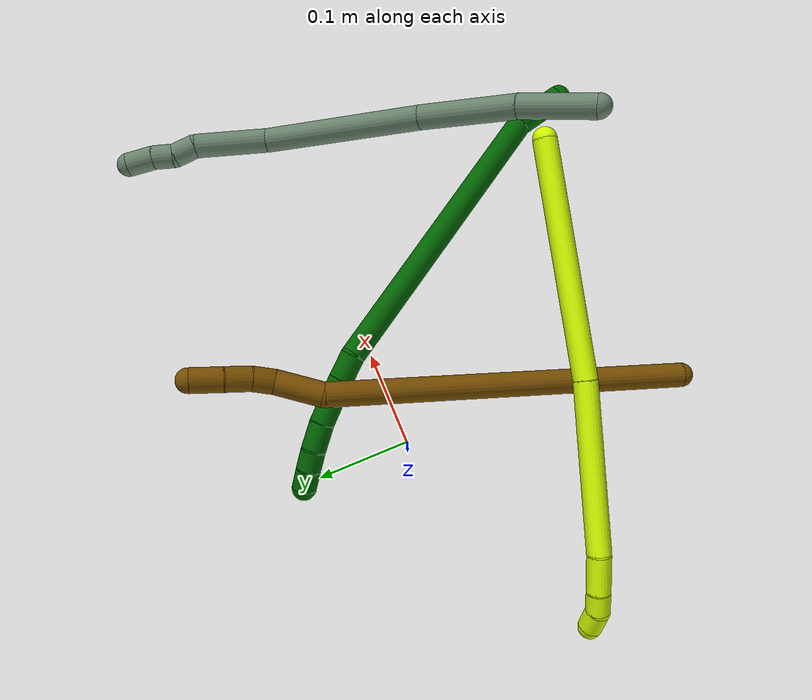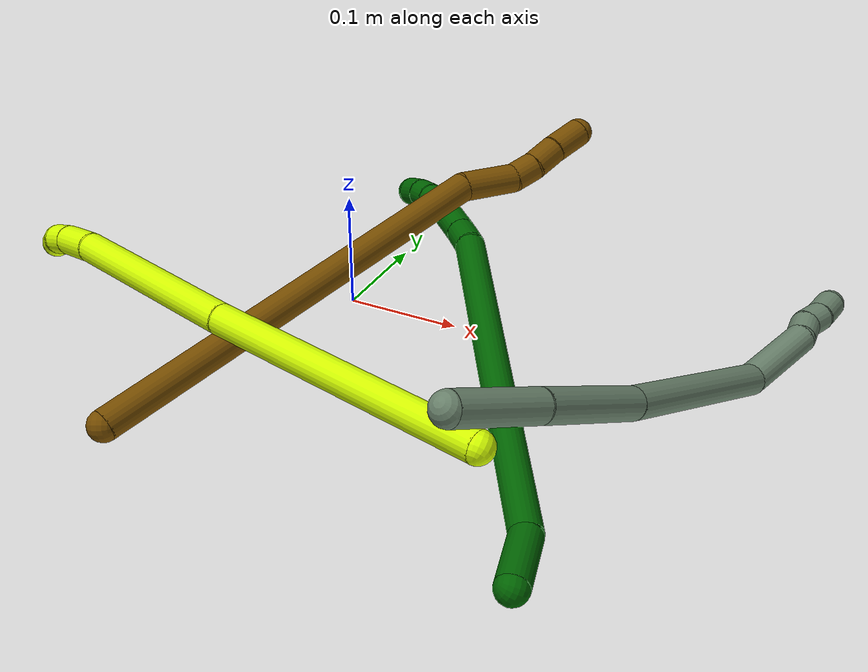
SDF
<sdf version="1.7">
 <world name="default">
  <model name="6">
   <static>0</static>
   <link name="6">
    <collision name="collision-cylinder-e_1_1_4">
     <pose>-0.022842 0.008369 0.005902 -0.956579 -1.14931 0.647792</pose>
     <geometry><cylinder><radius>0.0125</radius><length>0.050066</length></cylinder></geometry>
     <surface>
      <friction><ode><mu>1.16</mu><mu2>1.16</mu2><slip1>0</slip1><slip2>0</slip2></ode></friction>
      <contact><ode><kp>1e+06</kp><kd>1</kd><max_vel>0</max_vel><min_depth>0.001</min_depth></ode></contact>
     </surface>
    </collision>
    <visual name="visual-cylinder-e_1_1_4">
     <pose>-0.022842 0.008369 0.005902 -0.956579 -1.14931 0.647792</pose>
     <geometry><cylinder><radius>0.0125</radius><length>0.050066</length></cylinder></geometry>
     <material><ambient>0 0.392157 0.003922 1</ambient></material>
    </visual>
    <collision name="collision-cylinder-e_2_4_5">
     <pose>-0.186253 0.071856 -0.009478 -1.93928 -1.1729 1.5391</pose>
     <geometry><cylinder><radius>0.0125</radius><length>0.304962</length></cylinder></geometry>
     <surface>
      <friction><ode><mu>1.16</mu><mu2>1.16</mu2><slip1>0</slip1><slip2>0</slip2></ode></friction>
      <contact><ode><kp>1e+06</kp><kd>1</kd><max_vel>0</max_vel><min_depth>0.001</min_depth></ode></contact>
     </surface>
    </collision>
    <visual name="visual-cylinder-e_2_4_5">
     <pose>-0.186253 0.071856 -0.009478 -1.93928 -1.1729 1.5391</pose>
     <geometry><cylinder><radius>0.0125</radius><length>0.304962</length></cylinder></geometry>
     <material><ambient>0 0.392157 0.003922 1</ambient></material>
    </visual>
    <collision name="collision-cylinder-e_3_5_6">
     <pose>-0.337473 0.134925 -0.03308 -1.85467 -0.909769 1.15581</pose>
     <geometry><cylinder><radius>0.0125</radius><length>0.026985</length></cylinder></geometry>
     <surface>
      <friction><ode><mu>1.16</mu><mu2>1.16</mu2><slip1>0</slip1><slip2>0</slip2></ode></friction>
      <contact><ode><kp>1e+06</kp><kd>1</kd><max_vel>0</max_vel><min_depth>0.001</min_depth></ode></contact>
     </surface>
    </collision>
    <visual name="visual-cylinder-e_3_5_6">
     <pose>-0.337473 0.134925 -0.03308 -1.85467 -0.909769 1.15581</pose>
     <geometry><cylinder><radius>0.0125</radius><length>0.026985</length></cylinder></geometry>
     <material><ambient>0 0.392157 0.003922 1</ambient></material>
    </visual>
    <collision name="collision-cylinder-e_4_6_7">
     <pose>-0.366613 0.157021 -0.040712 -1.93005 -0.885674 1.20077</pose>
     <geometry><cylinder><radius>0.0125</radius><length>0.047755</length></cylinder></geometry>
     <surface>
      <friction><ode><mu>1.16</mu><mu2>1.16</mu2><slip1>0</slip1><slip2>0</slip2></ode></friction>
      <contact><ode><kp>1e+06</kp><kd>1</kd><max_vel>0</max_vel><min_depth>0.001</min_depth></ode></contact>
     </surface>
    </collision>
    <visual name="visual-cylinder-e_4_6_7">
     <pose>-0.366613 0.157021 -0.040712 -1.93005 -0.885674 1.20077</pose>
     <geometry><cylinder><radius>0.0125</radius><length>0.047755</length></cylinder></geometry>
     <material><ambient>0 0.392157 0.003922 1</ambient></material>
    </visual>
    <collision name="collision-cylinder-e_5_7_8">
     <pose>-0.395086 0.180136 -0.050172 -2.00401 -0.790451 1.15639</pose>
     <geometry><cylinder><radius>0.0125</radius><length>0.028096</length></cylinder></geometry>
     <surface>
      <friction><ode><mu>1.16</mu><mu2>1.16</mu2><slip1>0</slip1><slip2>0</slip2></ode></friction>
      <contact><ode><kp>1e+06</kp><kd>1</kd><max_vel>0</max_vel><min_depth>0.001</min_depth></ode></contact>
     </surface>
    </collision>
    <visual name="visual-cylinder-e_5_7_8">
     <pose>-0.395086 0.180136 -0.050172 -2.00401 -0.790451 1.15639</pose>
     <geometry><cylinder><radius>0.0125</radius><length>0.028096</length></cylinder></geometry>
     <material><ambient>0 0.392157 0.003922 1</ambient></material>
    </visual>
    <collision name="collision-cylinder-e_6_8_9">
     <pose>-0.411361 0.197041 -0.056944 -1.88998 -0.645297 0.866578</pose>
     <geometry><cylinder><radius>0.0125</radius><length>0.020921</length></cylinder></geometry>
     <surface>
      <friction><ode><mu>1.16</mu><mu2>1.16</mu2><slip1>0</slip1><slip2>0</slip2></ode></friction>
      <contact><ode><kp>1e+06</kp><kd>1</kd><max_vel>0</max_vel><min_depth>0.001</min_depth></ode></contact>
     </surface>
    </collision>
    <visual name="visual-cylinder-e_6_8_9">
     <pose>-0.411361 0.197041 -0.056944 -1.88998 -0.645297 0.866578</pose>
     <geometry><cylinder><radius>0.0125</radius><length>0.020921</length></cylinder></geometry>
     <material><ambient>0 0.392157 0.003922 1</ambient></material>
    </visual>
    <collision name="collision-cylinder-e_7_9_2">
     <pose>-0.42313 0.213838 -0.061559 -1.79197 -0.542735 0.669316</pose>
     <geometry><cylinder><radius>0.0125</radius><length>0.021215</length></cylinder></geometry>
     <surface>
      <friction><ode><mu>1.16</mu><mu2>1.16</mu2><slip1>0</slip1><slip2>0</slip2></ode></friction>
      <contact><ode><kp>1e+06</kp><kd>1</kd><max_vel>0</max_vel><min_depth>0.001</min_depth></ode></contact>
     </surface>
    </collision>
    <visual name="visual-cylinder-e_7_9_2">
     <pose>-0.42313 0.213838 -0.061559 -1.79197 -0.542735 0.669316</pose>
     <geometry><cylinder><radius>0.0125</radius><length>0.021215</length></cylinder></geometry>
     <material><ambient>0 0.392157 0.003922 1</ambient></material>
    </visual>
    <collision name="collision-sphere-2">
     <pose>-0.428609 0.2227 -0.063551 0 -0 0</pose>
     <geometry><sphere><radius>0.0125</radius></sphere></geometry>
     <surface>
      <friction><ode><mu>1.16</mu><mu2>1.16</mu2><slip1>0</slip1><slip2>0</slip2></ode></friction>
      <contact><ode><kp>1e+06</kp><kd>1</kd><max_vel>0</max_vel><min_depth>0.001</min_depth></ode></contact>
     </surface>
    </collision>
    <visual name="visual-sphere-2">
     <pose>-0.428609 0.2227 -0.063551 0 -0 0</pose>
     <geometry><sphere><radius>0.0125</radius></sphere></geometry>
     <material><ambient>0 0.392157 0.003922 1</ambient></material>
    </visual>
    <collision name="collision-sphere-9">
     <pose>-0.417652 0.204976 -0.059566 0 -0 0</pose>
     <geometry><sphere><radius>0.0125</radius></sphere></geometry>
     <surface>
      <friction><ode><mu>1.16</mu><mu2>1.16</mu2><slip1>0</slip1><slip2>0</slip2></ode></friction>
      <contact><ode><kp>1e+06</kp><kd>1</kd><max_vel>0</max_vel><min_depth>0.001</min_depth></ode></contact>
     </surface>
    </collision>
    <visual name="visual-sphere-9">
     <pose>-0.417652 0.204976 -0.059566 0 -0 0</pose>
     <geometry><sphere><radius>0.0125</radius></sphere></geometry>
     <material><ambient>0 0.392157 0.003922 1</ambient></material>
    </visual>
    <collision name="collision-sphere-4">
     <pose>-0.045684 0.016739 0.011805 0 -0 0</pose>
     <geometry><sphere><radius>0.0125</radius></sphere></geometry>
     <surface>
      <friction><ode><mu>1.16</mu><mu2>1.16</mu2><slip1>0</slip1><slip2>0</slip2></ode></friction>
      <contact><ode><kp>1e+06</kp><kd>1</kd><max_vel>0</max_vel><min_depth>0.001</min_depth></ode></contact>
     </surface>
    </collision>
    <visual name="visual-sphere-4">
     <pose>-0.045684 0.016739 0.011805 0 -0 0</pose>
     <geometry><sphere><radius>0.0125</radius></sphere></geometry>
     <material><ambient>0 0.392157 0.003922 1</ambient></material>
    </visual>
    <collision name="collision-sphere-1">
     <geometry><sphere><radius>0.0125</radius></sphere></geometry>
     <surface>
      <friction><ode><mu>1.16</mu><mu2>1.16</mu2><slip1>0</slip1><slip2>0</slip2></ode></friction>
      <contact><ode><kp>1e+06</kp><kd>1</kd><max_vel>0</max_vel><min_depth>0.001</min_depth></ode></contact>
     </surface>
    </collision>
    <visual name="visual-sphere-1">
     <geometry><sphere><radius>0.0125</radius></sphere></geometry>
     <material><ambient>0 0.392157 0.003922 1</ambient></material>
    </visual>
    <collision name="collision-sphere-8">
     <pose>-0.405069 0.189106 -0.054321 0 -0 0</pose>
     <geometry><sphere><radius>0.0125</radius></sphere></geometry>
     <surface>
      <friction><ode><mu>1.16</mu><mu2>1.16</mu2><slip1>0</slip1><slip2>0</slip2></ode></friction>
      <contact><ode><kp>1e+06</kp><kd>1</kd><max_vel>0</max_vel><min_depth>0.001</min_depth></ode></contact>
     </surface>
    </collision>
    <visual name="visual-sphere-8">
     <pose>-0.405069 0.189106 -0.054321 0 -0 0</pose>
     <geometry><sphere><radius>0.0125</radius></sphere></geometry>
     <material><ambient>0 0.392157 0.003922 1</ambient></material>
    </visual>
    <collision name="collision-sphere-5">
     <pose>-0.326822 0.126973 -0.03076 0 -0 0</pose>
     <geometry><sphere><radius>0.0125</radius></sphere></geometry>
     <surface>
      <friction><ode><mu>1.16</mu><mu2>1.16</mu2><slip1>0</slip1><slip2>0</slip2></ode></friction>
      <contact><ode><kp>1e+06</kp><kd>1</kd><max_vel>0</max_vel><min_depth>0.001</min_depth></ode></contact>
     </surface>
    </collision>
    <visual name="visual-sphere-5">
     <pose>-0.326822 0.126973 -0.03076 0 -0 0</pose>
     <geometry><sphere><radius>0.0125</radius></sphere></geometry>
     <material><ambient>0 0.392157 0.003922 1</ambient></material>
    </visual>
    <collision name="collision-sphere-6">
     <pose>-0.348123 0.142877 -0.0354 0 -0 0</pose>
     <geometry><sphere><radius>0.0125</radius></sphere></geometry>
     <surface>
      <friction><ode><mu>1.16</mu><mu2>1.16</mu2><slip1>0</slip1><slip2>0</slip2></ode></friction>
      <contact><ode><kp>1e+06</kp><kd>1</kd><max_vel>0</max_vel><min_depth>0.001</min_depth></ode></contact>
     </surface>
    </collision>
    <visual name="visual-sphere-6">
     <pose>-0.348123 0.142877 -0.0354 0 -0 0</pose>
     <geometry><sphere><radius>0.0125</radius></sphere></geometry>
     <material><ambient>0 0.392157 0.003922 1</ambient></material>
    </visual>
    <collision name="collision-sphere-7">
     <pose>-0.385102 0.171166 -0.046024 0 -0 0</pose>
     <geometry><sphere><radius>0.0125</radius></sphere></geometry>
     <surface>
      <friction><ode><mu>1.16</mu><mu2>1.16</mu2><slip1>0</slip1><slip2>0</slip2></ode></friction>
      <contact><ode><kp>1e+06</kp><kd>1</kd><max_vel>0</max_vel><min_depth>0.001</min_depth></ode></contact>
     </surface>
    </collision>
    <visual name="visual-sphere-7">
     <pose>-0.385102 0.171166 -0.046024 0 -0 0</pose>
     <geometry><sphere><radius>0.0125</radius></sphere></geometry>
     <material><ambient>0 0.392157 0.003922 1</ambient></material>
    </visual>
    <inertial>
     <pose>-0.226482 0.094384 -0.018677 0 -0 0</pose>
     <mass>0.5</mass>
     <inertia>
      <ixx>0.00094</ixx>
      <ixy>0</ixy>
      <ixz>0</ixz>
      <iyy>0.002988</iyy>
      <iyz>0</iyz>
      <izz>0.001335</izz>
     </inertia>
    </inertial>
   </link>
   <pose>0.278335 -0.287094 0.01247 -2.13006 0.453767 -1.32775</pose>
  </model>
  <model name="12">
   <static>0</static>
   <link name="12">
    <collision name="collision-cylinder-e_1_1_4">
     <pose>-0.017312 0.144142 0.113692 -0.90295 -0.094021 0.045614</pose>
     <geometry><cylinder><radius>0.0125</radius><length>0.368795</length></cylinder></geometry>
     <surface>
      <friction><ode><mu>1.16</mu><mu2>1.16</mu2><slip1>0</slip1><slip2>0</slip2></ode></friction>
      <contact><ode><kp>1e+06</kp><kd>1</kd><max_vel>0</max_vel><min_depth>0.001</min_depth></ode></contact>
     </surface>
    </collision>
    <visual name="visual-cylinder-e_1_1_4">
     <pose>-0.017312 0.144142 0.113692 -0.90295 -0.094021 0.045614</pose>
     <geometry><cylinder><radius>0.0125</radius><length>0.368795</length></cylinder></geometry>
     <material><ambient>0.466667 0.301961 0 1</ambient></material>
    </visual>
    <collision name="collision-cylinder-e_2_4_5">
     <pose>-0.030963 0.30234 0.247372 -0.61295 0.1487 -0.047133</pose>
     <geometry><cylinder><radius>0.0125</radius><length>0.049416</length></cylinder></geometry>
     <surface>
      <friction><ode><mu>1.16</mu><mu2>1.16</mu2><slip1>0</slip1><slip2>0</slip2></ode></friction>
      <contact><ode><kp>1e+06</kp><kd>1</kd><max_vel>0</max_vel><min_depth>0.001</min_depth></ode></contact>
     </surface>
    </collision>
    <visual name="visual-cylinder-e_2_4_5">
     <pose>-0.030963 0.30234 0.247372 -0.61295 0.1487 -0.047133</pose>
     <geometry><cylinder><radius>0.0125</radius><length>0.049416</length></cylinder></geometry>
     <material><ambient>0.466667 0.301961 0 1</ambient></material>
    </visual>
    <collision name="collision-cylinder-e_3_5_6">
     <pose>-0.029174 0.323593 0.275857 -0.702542 -0.166579 0.061169</pose>
     <geometry><cylinder><radius>0.0125</radius><length>0.022582</length></cylinder></geometry>
     <surface>
      <friction><ode><mu>1.16</mu><mu2>1.16</mu2><slip1>0</slip1><slip2>0</slip2></ode></friction>
      <contact><ode><kp>1e+06</kp><kd>1</kd><max_vel>0</max_vel><min_depth>0.001</min_depth></ode></contact>
     </surface>
    </collision>
    <visual name="visual-cylinder-e_3_5_6">
     <pose>-0.029174 0.323593 0.275857 -0.702542 -0.166579 0.061169</pose>
     <geometry><cylinder><radius>0.0125</radius><length>0.022582</length></cylinder></geometry>
     <material><ambient>0.466667 0.301961 0 1</ambient></material>
    </visual>
    <collision name="collision-cylinder-e_4_6_7">
     <pose>-0.033974 0.340597 0.292664 -0.86805 -0.223865 0.104103</pose>
     <geometry><cylinder><radius>0.0125</radius><length>0.026369</length></cylinder></geometry>
     <surface>
      <friction><ode><mu>1.16</mu><mu2>1.16</mu2><slip1>0</slip1><slip2>0</slip2></ode></friction>
      <contact><ode><kp>1e+06</kp><kd>1</kd><max_vel>0</max_vel><min_depth>0.001</min_depth></ode></contact>
     </surface>
    </collision>
    <visual name="visual-cylinder-e_4_6_7">
     <pose>-0.033974 0.340597 0.292664 -0.86805 -0.223865 0.104103</pose>
     <geometry><cylinder><radius>0.0125</radius><length>0.026369</length></cylinder></geometry>
     <material><ambient>0.466667 0.301961 0 1</ambient></material>
    </visual>
    <collision name="collision-cylinder-e_5_7_2">
     <pose>-0.038927 0.362955 0.311366 -0.879045 -0.123713 0.058227</pose>
     <geometry><cylinder><radius>0.0125</radius><length>0.032837</length></cylinder></geometry>
     <surface>
      <friction><ode><mu>1.16</mu><mu2>1.16</mu2><slip1>0</slip1><slip2>0</slip2></ode></friction>
      <contact><ode><kp>1e+06</kp><kd>1</kd><max_vel>0</max_vel><min_depth>0.001</min_depth></ode></contact>
     </surface>
    </collision>
    <visual name="visual-cylinder-e_5_7_2">
     <pose>-0.038927 0.362955 0.311366 -0.879045 -0.123713 0.058227</pose>
     <geometry><cylinder><radius>0.0125</radius><length>0.032837</length></cylinder></geometry>
     <material><ambient>0.466667 0.301961 0 1</ambient></material>
    </visual>
    <collision name="collision-sphere-2">
     <pose>-0.040953 0.375503 0.321759 0 -0 0</pose>
     <geometry><sphere><radius>0.0125</radius></sphere></geometry>
     <surface>
      <friction><ode><mu>1.16</mu><mu2>1.16</mu2><slip1>0</slip1><slip2>0</slip2></ode></friction>
      <contact><ode><kp>1e+06</kp><kd>1</kd><max_vel>0</max_vel><min_depth>0.001</min_depth></ode></contact>
     </surface>
    </collision>
    <visual name="visual-sphere-2">
     <pose>-0.040953 0.375503 0.321759 0 -0 0</pose>
     <geometry><sphere><radius>0.0125</radius></sphere></geometry>
     <material><ambient>0.466667 0.301961 0 1</ambient></material>
    </visual>
    <collision name="collision-sphere-7">
     <pose>-0.036901 0.350407 0.300973 0 -0 0</pose>
     <geometry><sphere><radius>0.0125</radius></sphere></geometry>
     <surface>
      <friction><ode><mu>1.16</mu><mu2>1.16</mu2><slip1>0</slip1><slip2>0</slip2></ode></friction>
      <contact><ode><kp>1e+06</kp><kd>1</kd><max_vel>0</max_vel><min_depth>0.001</min_depth></ode></contact>
     </surface>
    </collision>
    <visual name="visual-sphere-7">
     <pose>-0.036901 0.350407 0.300973 0 -0 0</pose>
     <geometry><sphere><radius>0.0125</radius></sphere></geometry>
     <material><ambient>0.466667 0.301961 0 1</ambient></material>
    </visual>
    <collision name="collision-sphere-6">
     <pose>-0.031047 0.330787 0.284355 0 -0 0</pose>
     <geometry><sphere><radius>0.0125</radius></sphere></geometry>
     <surface>
      <friction><ode><mu>1.16</mu><mu2>1.16</mu2><slip1>0</slip1><slip2>0</slip2></ode></friction>
      <contact><ode><kp>1e+06</kp><kd>1</kd><max_vel>0</max_vel><min_depth>0.001</min_depth></ode></contact>
     </surface>
    </collision>
    <visual name="visual-sphere-6">
     <pose>-0.031047 0.330787 0.284355 0 -0 0</pose>
     <geometry><sphere><radius>0.0125</radius></sphere></geometry>
     <material><ambient>0.466667 0.301961 0 1</ambient></material>
    </visual>
    <collision name="collision-sphere-5">
     <pose>-0.027302 0.316398 0.267359 0 -0 0</pose>
     <geometry><sphere><radius>0.0125</radius></sphere></geometry>
     <surface>
      <friction><ode><mu>1.16</mu><mu2>1.16</mu2><slip1>0</slip1><slip2>0</slip2></ode></friction>
      <contact><ode><kp>1e+06</kp><kd>1</kd><max_vel>0</max_vel><min_depth>0.001</min_depth></ode></contact>
     </surface>
    </collision>
    <visual name="visual-sphere-5">
     <pose>-0.027302 0.316398 0.267359 0 -0 0</pose>
     <geometry><sphere><radius>0.0125</radius></sphere></geometry>
     <material><ambient>0.466667 0.301961 0 1</ambient></material>
    </visual>
    <collision name="collision-sphere-1">
     <geometry><sphere><radius>0.0125</radius></sphere></geometry>
     <surface>
      <friction><ode><mu>1.16</mu><mu2>1.16</mu2><slip1>0</slip1><slip2>0</slip2></ode></friction>
      <contact><ode><kp>1e+06</kp><kd>1</kd><max_vel>0</max_vel><min_depth>0.001</min_depth></ode></contact>
     </surface>
    </collision>
    <visual name="visual-sphere-1">
     <geometry><sphere><radius>0.0125</radius></sphere></geometry>
     <material><ambient>0.466667 0.301961 0 1</ambient></material>
    </visual>
    <collision name="collision-sphere-4">
     <pose>-0.034623 0.288283 0.227385 0 -0 0</pose>
     <geometry><sphere><radius>0.0125</radius></sphere></geometry>
     <surface>
      <friction><ode><mu>1.16</mu><mu2>1.16</mu2><slip1>0</slip1><slip2>0</slip2></ode></friction>
      <contact><ode><kp>1e+06</kp><kd>1</kd><max_vel>0</max_vel><min_depth>0.001</min_depth></ode></contact>
     </surface>
    </collision>
    <visual name="visual-sphere-4">
     <pose>-0.034623 0.288283 0.227385 0 -0 0</pose>
     <geometry><sphere><radius>0.0125</radius></sphere></geometry>
     <material><ambient>0.466667 0.301961 0 1</ambient></material>
    </visual>
    <inertial>
     <pose>-0.021495 0.192613 0.156649 0 -0 0</pose>
     <mass>0.5</mass>
     <inertia>
      <ixx>0.004379</ixx>
      <ixy>0</ixy>
      <ixz>0</ixz>
      <iyy>0.002844</iyy>
      <iyz>0</iyz>
      <izz>-0.002873</izz>
     </inertia>
    </inertial>
   </link>
   <pose>-0.039105 -0.288556 0.037756 0.253014 1.45346 0.569931</pose>
  </model>
  <model name="15">
   <static>0</static>
   <link name="15">
    <collision name="collision-cylinder-e_1_1_4">
     <pose>-0.108152 -0.04887 0.023454 1.12333 -1.10618 -0.741093</pose>
     <geometry><cylinder><radius>0.0125</radius><length>0.241952</length></cylinder></geometry>
     <surface>
      <friction><ode><mu>1.16</mu><mu2>1.16</mu2><slip1>0</slip1><slip2>0</slip2></ode></friction>
      <contact><ode><kp>1e+06</kp><kd>1</kd><max_vel>0</max_vel><min_depth>0.001</min_depth></ode></contact>
     </surface>
    </collision>
    <visual name="visual-cylinder-e_1_1_4">
     <pose>-0.108152 -0.04887 0.023454 1.12333 -1.10618 -0.741093</pose>
     <geometry><cylinder><radius>0.0125</radius><length>0.241952</length></cylinder></geometry>
     <material><ambient>0.835294 1 0 1</ambient></material>
    </visual>
    <collision name="collision-cylinder-e_2_4_5">
     <pose>-0.295312 -0.126558 0.068118 0.936322 -1.14556 -0.630442</pose>
     <geometry><cylinder><radius>0.0125</radius><length>0.173466</length></cylinder></geometry>
     <surface>
      <friction><ode><mu>1.16</mu><mu2>1.16</mu2><slip1>0</slip1><slip2>0</slip2></ode></friction>
      <contact><ode><kp>1e+06</kp><kd>1</kd><max_vel>0</max_vel><min_depth>0.001</min_depth></ode></contact>
     </surface>
    </collision>
    <visual name="visual-cylinder-e_2_4_5">
     <pose>-0.295312 -0.126558 0.068118 0.936322 -1.14556 -0.630442</pose>
     <geometry><cylinder><radius>0.0125</radius><length>0.173466</length></cylinder></geometry>
     <material><ambient>0.835294 1 0 1</ambient></material>
    </visual>
    <collision name="collision-cylinder-e_3_5_6">
     <pose>-0.393381 -0.158515 0.09325 0.675011 -1.31302 -0.528177</pose>
     <geometry><cylinder><radius>0.0125</radius><length>0.039423</length></cylinder></geometry>
     <surface>
      <friction><ode><mu>1.16</mu><mu2>1.16</mu2><slip1>0</slip1><slip2>0</slip2></ode></friction>
      <contact><ode><kp>1e+06</kp><kd>1</kd><max_vel>0</max_vel><min_depth>0.001</min_depth></ode></contact>
     </surface>
    </collision>
    <visual name="visual-cylinder-e_3_5_6">
     <pose>-0.393381 -0.158515 0.09325 0.675011 -1.31302 -0.528177</pose>
     <geometry><cylinder><radius>0.0125</radius><length>0.039423</length></cylinder></geometry>
     <material><ambient>0.835294 1 0 1</ambient></material>
    </visual>
    <collision name="collision-cylinder-e_4_6_7">
     <pose>-0.423352 -0.162508 0.098533 0.560367 -1.42472 -0.487161</pose>
     <geometry><cylinder><radius>0.0125</radius><length>0.022057</length></cylinder></geometry>
     <surface>
      <friction><ode><mu>1.16</mu><mu2>1.16</mu2><slip1>0</slip1><slip2>0</slip2></ode></friction>
      <contact><ode><kp>1e+06</kp><kd>1</kd><max_vel>0</max_vel><min_depth>0.001</min_depth></ode></contact>
     </surface>
    </collision>
    <visual name="visual-cylinder-e_4_6_7">
     <pose>-0.423352 -0.162508 0.098533 0.560367 -1.42472 -0.487161</pose>
     <geometry><cylinder><radius>0.0125</radius><length>0.022057</length></cylinder></geometry>
     <material><ambient>0.835294 1 0 1</ambient></material>
    </visual>
    <collision name="collision-cylinder-e_5_7_2">
     <pose>-0.445089 -0.159867 0.101896 -1.0502 -1.21458 0.765476</pose>
     <geometry><cylinder><radius>0.0125</radius><length>0.023102</length></cylinder></geometry>
     <surface>
      <friction><ode><mu>1.16</mu><mu2>1.16</mu2><slip1>0</slip1><slip2>0</slip2></ode></friction>
      <contact><ode><kp>1e+06</kp><kd>1</kd><max_vel>0</max_vel><min_depth>0.001</min_depth></ode></contact>
     </surface>
    </collision>
    <visual name="visual-cylinder-e_5_7_2">
     <pose>-0.445089 -0.159867 0.101896 -1.0502 -1.21458 0.765476</pose>
     <geometry><cylinder><radius>0.0125</radius><length>0.023102</length></cylinder></geometry>
     <material><ambient>0.835294 1 0 1</ambient></material>
    </visual>
    <collision name="collision-sphere-2">
     <pose>-0.455915 -0.156373 0.1039 0 -0 0</pose>
     <geometry><sphere><radius>0.0125</radius></sphere></geometry>
     <surface>
      <friction><ode><mu>1.16</mu><mu2>1.16</mu2><slip1>0</slip1><slip2>0</slip2></ode></friction>
      <contact><ode><kp>1e+06</kp><kd>1</kd><max_vel>0</max_vel><min_depth>0.001</min_depth></ode></contact>
     </surface>
    </collision>
    <visual name="visual-sphere-2">
     <pose>-0.455915 -0.156373 0.1039 0 -0 0</pose>
     <geometry><sphere><radius>0.0125</radius></sphere></geometry>
     <material><ambient>0.835294 1 0 1</ambient></material>
    </visual>
    <collision name="collision-sphere-7">
     <pose>-0.434263 -0.163362 0.099892 0 -0 0</pose>
     <geometry><sphere><radius>0.0125</radius></sphere></geometry>
     <surface>
      <friction><ode><mu>1.16</mu><mu2>1.16</mu2><slip1>0</slip1><slip2>0</slip2></ode></friction>
      <contact><ode><kp>1e+06</kp><kd>1</kd><max_vel>0</max_vel><min_depth>0.001</min_depth></ode></contact>
     </surface>
    </collision>
    <visual name="visual-sphere-7">
     <pose>-0.434263 -0.163362 0.099892 0 -0 0</pose>
     <geometry><sphere><radius>0.0125</radius></sphere></geometry>
     <material><ambient>0.835294 1 0 1</ambient></material>
    </visual>
    <collision name="collision-sphere-6">
     <pose>-0.412441 -0.161655 0.097173 0 -0 0</pose>
     <geometry><sphere><radius>0.0125</radius></sphere></geometry>
     <surface>
      <friction><ode><mu>1.16</mu><mu2>1.16</mu2><slip1>0</slip1><slip2>0</slip2></ode></friction>
      <contact><ode><kp>1e+06</kp><kd>1</kd><max_vel>0</max_vel><min_depth>0.001</min_depth></ode></contact>
     </surface>
    </collision>
    <visual name="visual-sphere-6">
     <pose>-0.412441 -0.161655 0.097173 0 -0 0</pose>
     <geometry><sphere><radius>0.0125</radius></sphere></geometry>
     <material><ambient>0.835294 1 0 1</ambient></material>
    </visual>
    <collision name="collision-sphere-5">
     <pose>-0.374321 -0.155375 0.089327 0 -0 0</pose>
     <geometry><sphere><radius>0.0125</radius></sphere></geometry>
     <surface>
      <friction><ode><mu>1.16</mu><mu2>1.16</mu2><slip1>0</slip1><slip2>0</slip2></ode></friction>
      <contact><ode><kp>1e+06</kp><kd>1</kd><max_vel>0</max_vel><min_depth>0.001</min_depth></ode></contact>
     </surface>
    </collision>
    <visual name="visual-sphere-5">
     <pose>-0.374321 -0.155375 0.089327 0 -0 0</pose>
     <geometry><sphere><radius>0.0125</radius></sphere></geometry>
     <material><ambient>0.835294 1 0 1</ambient></material>
    </visual>
    <collision name="collision-sphere-1">
     <geometry><sphere><radius>0.0125</radius></sphere></geometry>
     <surface>
      <friction><ode><mu>1.16</mu><mu2>1.16</mu2><slip1>0</slip1><slip2>0</slip2></ode></friction>
      <contact><ode><kp>1e+06</kp><kd>1</kd><max_vel>0</max_vel><min_depth>0.001</min_depth></ode></contact>
     </surface>
    </collision>
    <visual name="visual-sphere-1">
     <geometry><sphere><radius>0.0125</radius></sphere></geometry>
     <material><ambient>0.835294 1 0 1</ambient></material>
    </visual>
    <collision name="collision-sphere-4">
     <pose>-0.216303 -0.09774 0.046908 0 -0 0</pose>
     <geometry><sphere><radius>0.0125</radius></sphere></geometry>
     <surface>
      <friction><ode><mu>1.16</mu><mu2>1.16</mu2><slip1>0</slip1><slip2>0</slip2></ode></friction>
      <contact><ode><kp>1e+06</kp><kd>1</kd><max_vel>0</max_vel><min_depth>0.001</min_depth></ode></contact>
     </surface>
    </collision>
    <visual name="visual-sphere-4">
     <pose>-0.216303 -0.09774 0.046908 0 -0 0</pose>
     <geometry><sphere><radius>0.0125</radius></sphere></geometry>
     <material><ambient>0.835294 1 0 1</ambient></material>
    </visual>
    <inertial>
     <pose>-0.225045 -0.094609 0.051389 0 -0 0</pose>
     <mass>0.5</mass>
     <inertia><ixx>3.9e-05</ixx><ixy>0</ixy><ixz>0</ixz><iyy>0.00096</iyy><iyz>0</iyz><izz>0.002112</izz></inertia>
    </inertial>
   </link>
   <pose>0.232898 -0.242641 0.077939 -0.975619 -0.443949 -0.291726</pose>
  </model>
  <model name="17">
   <static>0</static>
   <link name="17">
    <collision name="collision-cylinder-e_1_1_4">
     <pose>0.014028 0.013147 -0.033744 -2.77007 0.36955 -1.56534</pose>
     <geometry><cylinder><radius>0.0125</radius><length>0.077673</length></cylinder></geometry>
     <surface>
      <friction><ode><mu>1.16</mu><mu2>1.16</mu2><slip1>0</slip1><slip2>0</slip2></ode></friction>
      <contact><ode><kp>1e+06</kp><kd>1</kd><max_vel>0</max_vel><min_depth>0.001</min_depth></ode></contact>
     </surface>
    </collision>
    <visual name="visual-cylinder-e_1_1_4">
     <pose>0.014028 0.013147 -0.033744 -2.77007 0.36955 -1.56534</pose>
     <geometry><cylinder><radius>0.0125</radius><length>0.077673</length></cylinder></geometry>
     <material><ambient>0.415686 0.509804 0.423529 1</ambient></material>
    </visual>
    <collision name="collision-cylinder-e_2_4_5">
     <pose>0.041149 0.043511 -0.113207 -2.78145 0.261862 -1.25248</pose>
     <geometry><cylinder><radius>0.0125</radius><length>0.101156</length></cylinder></geometry>
     <surface>
      <friction><ode><mu>1.16</mu><mu2>1.16</mu2><slip1>0</slip1><slip2>0</slip2></ode></friction>
      <contact><ode><kp>1e+06</kp><kd>1</kd><max_vel>0</max_vel><min_depth>0.001</min_depth></ode></contact>
     </surface>
    </collision>
    <visual name="visual-cylinder-e_2_4_5">
     <pose>0.041149 0.043511 -0.113207 -2.78145 0.261862 -1.25248</pose>
     <geometry><cylinder><radius>0.0125</radius><length>0.101156</length></cylinder></geometry>
     <material><ambient>0.415686 0.509804 0.423529 1</ambient></material>
    </visual>
    <collision name="collision-cylinder-e_3_5_6">
     <pose>0.074446 0.097345 -0.233241 -2.68377 0.239207 -0.952408</pose>
     <geometry><cylinder><radius>0.0125</radius><length>0.170547</length></cylinder></geometry>
     <surface>
      <friction><ode><mu>1.16</mu><mu2>1.16</mu2><slip1>0</slip1><slip2>0</slip2></ode></friction>
      <contact><ode><kp>1e+06</kp><kd>1</kd><max_vel>0</max_vel><min_depth>0.001</min_depth></ode></contact>
     </surface>
    </collision>
    <visual name="visual-cylinder-e_3_5_6">
     <pose>0.074446 0.097345 -0.233241 -2.68377 0.239207 -0.952408</pose>
     <geometry><cylinder><radius>0.0125</radius><length>0.170547</length></cylinder></geometry>
     <material><ambient>0.415686 0.509804 0.423529 1</ambient></material>
    </visual>
    <collision name="collision-cylinder-e_4_6_7">
     <pose>0.106905 0.161239 -0.331326 -2.28761 0.326574 -0.694843</pose>
     <geometry><cylinder><radius>0.0125</radius><length>0.0764</length></cylinder></geometry>
     <surface>
      <friction><ode><mu>1.16</mu><mu2>1.16</mu2><slip1>0</slip1><slip2>0</slip2></ode></friction>
      <contact><ode><kp>1e+06</kp><kd>1</kd><max_vel>0</max_vel><min_depth>0.001</min_depth></ode></contact>
     </surface>
    </collision>
    <visual name="visual-cylinder-e_4_6_7">
     <pose>0.106905 0.161239 -0.331326 -2.28761 0.326574 -0.694843</pose>
     <geometry><cylinder><radius>0.0125</radius><length>0.0764</length></cylinder></geometry>
     <material><ambient>0.415686 0.509804 0.423529 1</ambient></material>
    </visual>
    <collision name="collision-cylinder-e_5_7_8">
     <pose>0.118836 0.197601 -0.362698 -2.26751 -0.027302 0.058428</pose>
     <geometry><cylinder><radius>0.0125</radius><length>0.023702</length></cylinder></geometry>
     <surface>
      <friction><ode><mu>1.16</mu><mu2>1.16</mu2><slip1>0</slip1><slip2>0</slip2></ode></friction>
      <contact><ode><kp>1e+06</kp><kd>1</kd><max_vel>0</max_vel><min_depth>0.001</min_depth></ode></contact>
     </surface>
    </collision>
    <visual name="visual-cylinder-e_5_7_8">
     <pose>0.118836 0.197601 -0.362698 -2.26751 -0.027302 0.058428</pose>
     <geometry><cylinder><radius>0.0125</radius><length>0.023702</length></cylinder></geometry>
     <material><ambient>0.415686 0.509804 0.423529 1</ambient></material>
    </visual>
    <collision name="collision-cylinder-e_6_8_9">
     <pose>0.122046 0.213684 -0.378222 -2.41809 0.3226 -0.812196</pose>
     <geometry><cylinder><radius>0.0125</radius><length>0.022289</length></cylinder></geometry>
     <surface>
      <friction><ode><mu>1.16</mu><mu2>1.16</mu2><slip1>0</slip1><slip2>0</slip2></ode></friction>
      <contact><ode><kp>1e+06</kp><kd>1</kd><max_vel>0</max_vel><min_depth>0.001</min_depth></ode></contact>
     </surface>
    </collision>
    <visual name="visual-cylinder-e_6_8_9">
     <pose>0.122046 0.213684 -0.378222 -2.41809 0.3226 -0.812196</pose>
     <geometry><cylinder><radius>0.0125</radius><length>0.022289</length></cylinder></geometry>
     <material><ambient>0.415686 0.509804 0.423529 1</ambient></material>
    </visual>
    <collision name="collision-cylinder-e_7_9_2">
     <pose>0.127438 0.230543 -0.396072 -2.3596 0.132098 -0.318206</pose>
     <geometry><cylinder><radius>0.0125</radius><length>0.028233</length></cylinder></geometry>
     <surface>
      <friction><ode><mu>1.16</mu><mu2>1.16</mu2><slip1>0</slip1><slip2>0</slip2></ode></friction>
      <contact><ode><kp>1e+06</kp><kd>1</kd><max_vel>0</max_vel><min_depth>0.001</min_depth></ode></contact>
     </surface>
    </collision>
    <visual name="visual-cylinder-e_7_9_2">
     <pose>0.127438 0.230543 -0.396072 -2.3596 0.132098 -0.318206</pose>
     <geometry><cylinder><radius>0.0125</radius><length>0.028233</length></cylinder></geometry>
     <material><ambient>0.415686 0.509804 0.423529 1</ambient></material>
    </visual>
    <collision name="collision-sphere-2">
     <pose>0.129298 0.240404 -0.406 0 -0 0</pose>
     <geometry><sphere><radius>0.0125</radius></sphere></geometry>
     <surface>
      <friction><ode><mu>1.16</mu><mu2>1.16</mu2><slip1>0</slip1><slip2>0</slip2></ode></friction>
      <contact><ode><kp>1e+06</kp><kd>1</kd><max_vel>0</max_vel><min_depth>0.001</min_depth></ode></contact>
     </surface>
    </collision>
    <visual name="visual-sphere-2">
     <pose>0.129298 0.240404 -0.406 0 -0 0</pose>
     <geometry><sphere><radius>0.0125</radius></sphere></geometry>
     <material><ambient>0.415686 0.509804 0.423529 1</ambient></material>
    </visual>
    <collision name="collision-sphere-9">
     <pose>0.125579 0.220681 -0.386143 0 -0 0</pose>
     <geometry><sphere><radius>0.0125</radius></sphere></geometry>
     <surface>
      <friction><ode><mu>1.16</mu><mu2>1.16</mu2><slip1>0</slip1><slip2>0</slip2></ode></friction>
      <contact><ode><kp>1e+06</kp><kd>1</kd><max_vel>0</max_vel><min_depth>0.001</min_depth></ode></contact>
     </surface>
    </collision>
    <visual name="visual-sphere-9">
     <pose>0.125579 0.220681 -0.386143 0 -0 0</pose>
     <geometry><sphere><radius>0.0125</radius></sphere></geometry>
     <material><ambient>0.415686 0.509804 0.423529 1</ambient></material>
    </visual>
    <collision name="collision-sphere-4">
     <pose>0.028055 0.026294 -0.067488 0 -0 0</pose>
     <geometry><sphere><radius>0.0125</radius></sphere></geometry>
     <surface>
      <friction><ode><mu>1.16</mu><mu2>1.16</mu2><slip1>0</slip1><slip2>0</slip2></ode></friction>
      <contact><ode><kp>1e+06</kp><kd>1</kd><max_vel>0</max_vel><min_depth>0.001</min_depth></ode></contact>
     </surface>
    </collision>
    <visual name="visual-sphere-4">
     <pose>0.028055 0.026294 -0.067488 0 -0 0</pose>
     <geometry><sphere><radius>0.0125</radius></sphere></geometry>
     <material><ambient>0.415686 0.509804 0.423529 1</ambient></material>
    </visual>
    <collision name="collision-sphere-1">
     <geometry><sphere><radius>0.0125</radius></sphere></geometry>
     <surface>
      <friction><ode><mu>1.16</mu><mu2>1.16</mu2><slip1>0</slip1><slip2>0</slip2></ode></friction>
      <contact><ode><kp>1e+06</kp><kd>1</kd><max_vel>0</max_vel><min_depth>0.001</min_depth></ode></contact>
     </surface>
    </collision>
    <visual name="visual-sphere-1">
     <geometry><sphere><radius>0.0125</radius></sphere></geometry>
     <material><ambient>0.415686 0.509804 0.423529 1</ambient></material>
    </visual>
    <collision name="collision-sphere-8">
     <pose>0.118513 0.206687 -0.3703 0 -0 0</pose>
     <geometry><sphere><radius>0.0125</radius></sphere></geometry>
     <surface>
      <friction><ode><mu>1.16</mu><mu2>1.16</mu2><slip1>0</slip1><slip2>0</slip2></ode></friction>
      <contact><ode><kp>1e+06</kp><kd>1</kd><max_vel>0</max_vel><min_depth>0.001</min_depth></ode></contact>
     </surface>
    </collision>
    <visual name="visual-sphere-8">
     <pose>0.118513 0.206687 -0.3703 0 -0 0</pose>
     <geometry><sphere><radius>0.0125</radius></sphere></geometry>
     <material><ambient>0.415686 0.509804 0.423529 1</ambient></material>
    </visual>
    <collision name="collision-sphere-5">
     <pose>0.054242 0.060727 -0.158927 0 -0 0</pose>
     <geometry><sphere><radius>0.0125</radius></sphere></geometry>
     <surface>
      <friction><ode><mu>1.16</mu><mu2>1.16</mu2><slip1>0</slip1><slip2>0</slip2></ode></friction>
      <contact><ode><kp>1e+06</kp><kd>1</kd><max_vel>0</max_vel><min_depth>0.001</min_depth></ode></contact>
     </surface>
    </collision>
    <visual name="visual-sphere-5">
     <pose>0.054242 0.060727 -0.158927 0 -0 0</pose>
     <geometry><sphere><radius>0.0125</radius></sphere></geometry>
     <material><ambient>0.415686 0.509804 0.423529 1</ambient></material>
    </visual>
    <collision name="collision-sphere-6">
     <pose>0.094651 0.133962 -0.307555 0 -0 0</pose>
     <geometry><sphere><radius>0.0125</radius></sphere></geometry>
     <surface>
      <friction><ode><mu>1.16</mu><mu2>1.16</mu2><slip1>0</slip1><slip2>0</slip2></ode></friction>
      <contact><ode><kp>1e+06</kp><kd>1</kd><max_vel>0</max_vel><min_depth>0.001</min_depth></ode></contact>
     </surface>
    </collision>
    <visual name="visual-sphere-6">
     <pose>0.094651 0.133962 -0.307555 0 -0 0</pose>
     <geometry><sphere><radius>0.0125</radius></sphere></geometry>
     <material><ambient>0.415686 0.509804 0.423529 1</ambient></material>
    </visual>
    <collision name="collision-sphere-7">
     <pose>0.11916 0.188516 -0.355096 0 -0 0</pose>
     <geometry><sphere><radius>0.0125</radius></sphere></geometry>
     <surface>
      <friction><ode><mu>1.16</mu><mu2>1.16</mu2><slip1>0</slip1><slip2>0</slip2></ode></friction>
      <contact><ode><kp>1e+06</kp><kd>1</kd><max_vel>0</max_vel><min_depth>0.001</min_depth></ode></contact>
     </surface>
    </collision>
    <visual name="visual-sphere-7">
     <pose>0.11916 0.188516 -0.355096 0 -0 0</pose>
     <geometry><sphere><radius>0.0125</radius></sphere></geometry>
     <material><ambient>0.415686 0.509804 0.423529 1</ambient></material>
    </visual>
    <inertial>
     <pose>0.070502 0.100597 -0.214747 0 -0 0</pose>
     <mass>0.5</mass>
     <inertia>
      <ixx>-0.000172</ixx>
      <ixy>0</ixy>
      <ixz>0</ixz>
      <iyy>-0.000676</iyy>
      <iyz>0</iyz>
      <izz>-0.000442</izz>
     </inertia>
    </inertial>
   </link>
   <pose>0.233449 -0.288082 0.136639 0.691554 -0.236019 0.02581</pose>
  </model>
 </world>
</sdf>
